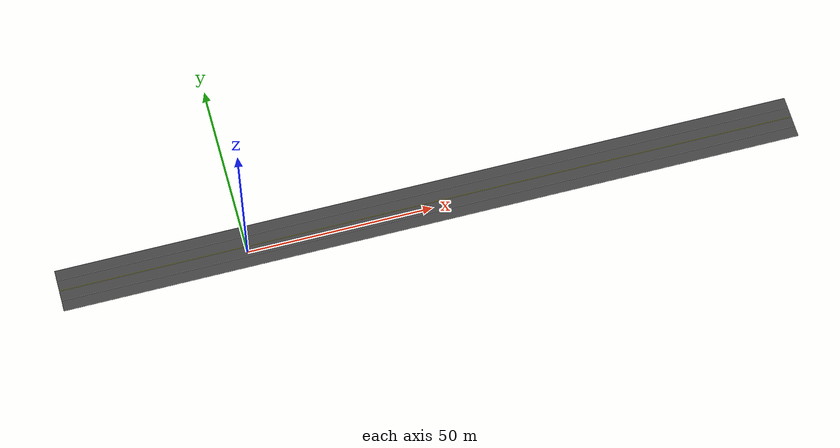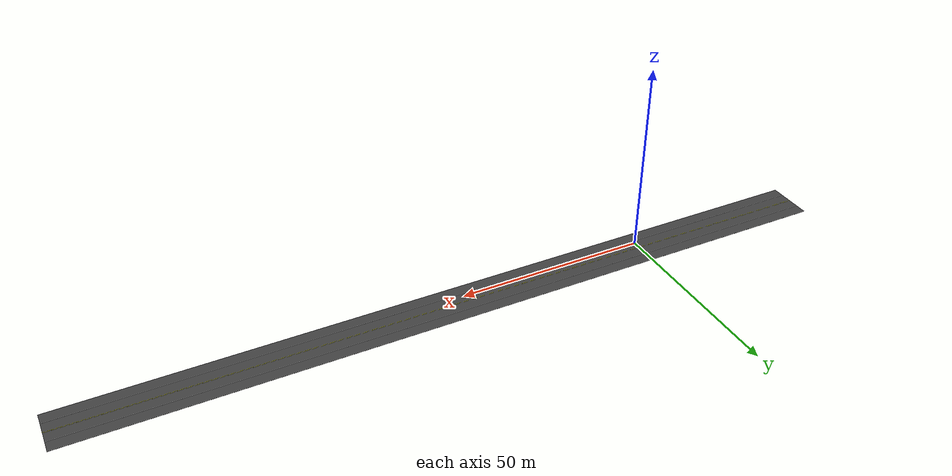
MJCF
<mujoco model="base_scene">

    <!--관성 설정(balanceinertia) 임의로 추가했으니, 수정 필수 !!!-->
    <compiler angle="degree" coordinate="local" balanceinertia="true"/>
    <!--관성 설정(balanceinertia) 임의로 추가했으니, 수정 필수 !!!-->

    <option gravity="0 0 -9.81" integrator="RK4" timestep="0.001"/>

    <asset>
        <!-- 텍스처 사용 안 함 → asset 내 material 최소만 유지 -->
        <material name="wheel_mat" rgba="0.2 0.2 0.2 1"/>
    </asset>

    <worldbody>

        <!-- 🛣️ 왕복 4차선 도로 (길이 200m, 폭 12m) -->
        <geom name="road_main"
              type="box"
              pos="50 1.7 -0.15"
              size="100 6.0 0.05"
              rgba="0.25 0.25 0.25 1"/>

        <!-- 🟨 중앙 분리선 (더블 옐로우) -->
        <geom name="center_line_left"
              type="box"
              pos="50 1.8 -0.095"
              size="100 0.02 0.001"
              rgba="1 1 0 1"/>

        <geom name="center_line_right"
              type="box"
              pos="50 1.6 -0.095"
              size="100 0.02 0.001"
              rgba="1 1 0 1"/>

        <!-- 🟩 좌측 편도 2차로 -->
        <geom name="lane_left_outer"
              type="box"
              pos="50 7.7 -0.095"
              size="100 0.03 0.001"
              rgba="1 1 1 1"/>

        <geom name="lane_left_inner"
              type="box"
              pos="50 4.7 -0.095"
              size="100 0.03 0.001"
              rgba="1 1 1 1"/>

        <!-- 🟥 우측 편도 2차로 -->
        <geom name="lane_right_inner"
              type="box"
              pos="50 -1.3 -0.095"
              size="100 0.03 0.001"
              rgba="1 1 1 1"/>

        <geom name="lane_right_outer"
              type="box"
              pos="50 -4.3 -0.095"
              size="100 0.03 0.001"
              rgba="1 1 1 1"/>

        <light name="sun_key"
            pos="0 0 12" dir="0 0 -1" directional="true"
            diffuse="0.75 0.75 0.75" ambient="0.30 0.30 0.30" specular="0.15 0.15 0.15"
            castshadow="false"/>

        <!-- VEHICLE_ACTIVE INCLUDE -->
        <!-- VEHICLE_STATIC INCLUDE -->

        <!--VEHICLE_ACTIVE INCLUDE-->
        <!--VEHICLE_STATIC INCLUDE-->

    </worldbody>

    <!--ACTUATOR INCLUDE-->
</mujoco>
